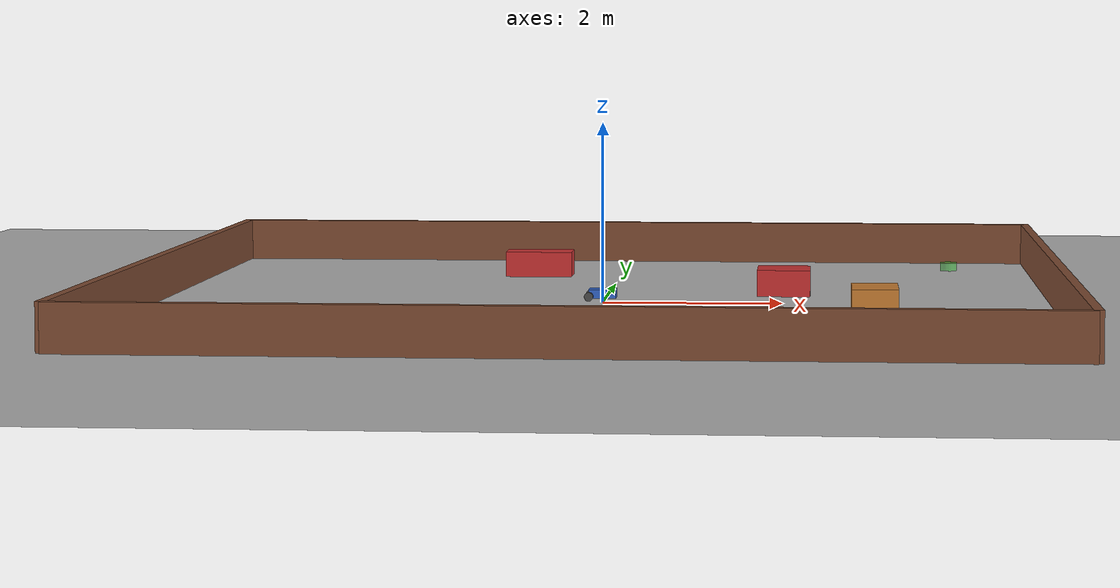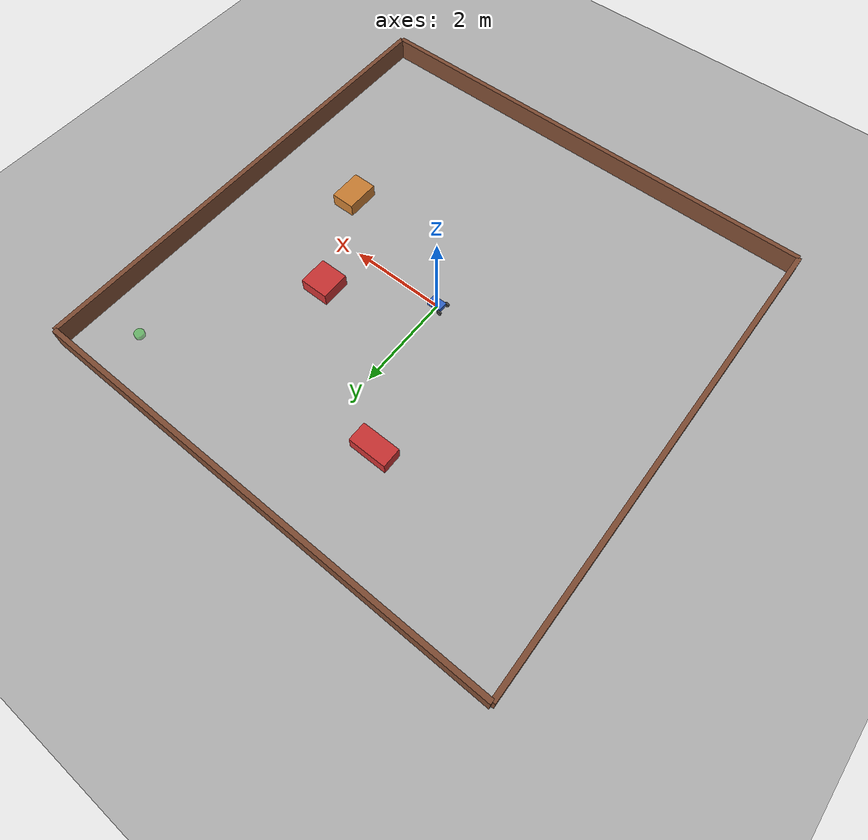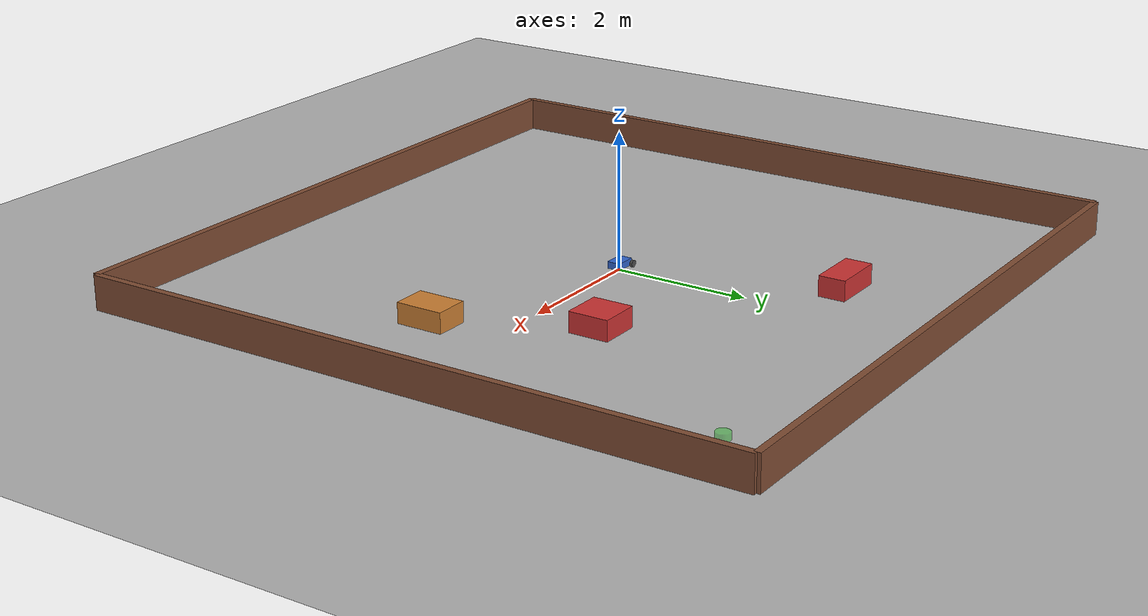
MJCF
<mujoco model="open_room">
  <option timestep="0.002" gravity="0 0 -9.81"/>

  <asset>
    <texture name="grid" type="2d" builtin="checker" rgb1="0.8 0.8 0.8" rgb2="0.6 0.6 0.6" width="512" height="512"/>
    <material name="grid_mat" texture="grid" texrepeat="8 8" reflectance="0.1"/>
  </asset>

  <worldbody>
    <!-- Ground plane -->
    <geom name="ground" type="plane" size="10 10 0.1" material="grid_mat"/>

    <!-- Walls -->
    <body name="walls" pos="0 0 0.25">
      <geom name="wall_north" type="box" pos="0 5 0" size="5 0.05 0.25" rgba="0.5 0.3 0.2 1"/>
      <geom name="wall_south" type="box" pos="0 -5 0" size="5 0.05 0.25" rgba="0.5 0.3 0.2 1"/>
      <geom name="wall_east" type="box" pos="5 0 0" size="0.05 5 0.25" rgba="0.5 0.3 0.2 1"/>
      <geom name="wall_west" type="box" pos="-5 0 0" size="0.05 5 0.25" rgba="0.5 0.3 0.2 1"/>
    </body>

    <!-- Obstacles -->
    <body name="obstacle1" pos="2 1 0.15">
      <geom name="obs1" type="box" size="0.3 0.3 0.15" rgba="0.8 0.2 0.2 1"/>
    </body>
    <body name="obstacle2" pos="-1 3 0.15">
      <geom name="obs2" type="box" size="0.4 0.2 0.15" rgba="0.8 0.2 0.2 1"/>
    </body>
    <body name="obstacle3" pos="3 -1 0.15">
      <geom name="obs3" type="box" size="0.25 0.35 0.15" rgba="0.8 0.5 0.2 1"/>
    </body>

    <!-- Differential drive robot -->
    <body name="robot_chassis" pos="0 0 0.1">
      <joint name="robot_free" type="free"/>
      <geom name="chassis" type="box" size="0.15 0.1 0.05" mass="2.0" rgba="0.2 0.4 0.8 1"/>

      <!-- Left wheel -->
      <body name="left_wheel" pos="-0.15 0.12 -0.03">
        <joint name="left_wheel_joint" type="hinge" axis="0 1 0"/>
        <geom name="left_wheel_geom" type="cylinder" size="0.05 0.02" rgba="0.3 0.3 0.3 1"
              euler="90 0 0"/>
      </body>

      <!-- Right wheel -->
      <body name="right_wheel" pos="-0.15 -0.12 -0.03">
        <joint name="right_wheel_joint" type="hinge" axis="0 1 0"/>
        <geom name="right_wheel_geom" type="cylinder" size="0.05 0.02" rgba="0.3 0.3 0.3 1"
              euler="90 0 0"/>
      </body>

      <!-- Caster wheel (passive) -->
      <body name="caster" pos="0.12 0 -0.04">
        <geom name="caster_geom" type="sphere" size="0.02" rgba="0.5 0.5 0.5 1"/>
      </body>
    </body>

    <!-- Goal marker -->
    <body name="goal_marker" pos="4 4 0.05">
      <geom name="goal_geom" type="cylinder" size="0.1 0.05" rgba="0.2 0.8 0.2 0.5"/>
    </body>
  </worldbody>

  <actuator>
    <velocity name="left_motor" joint="left_wheel_joint" kv="1"/>
    <velocity name="right_motor" joint="right_wheel_joint" kv="1"/>
  </actuator>
</mujoco>
